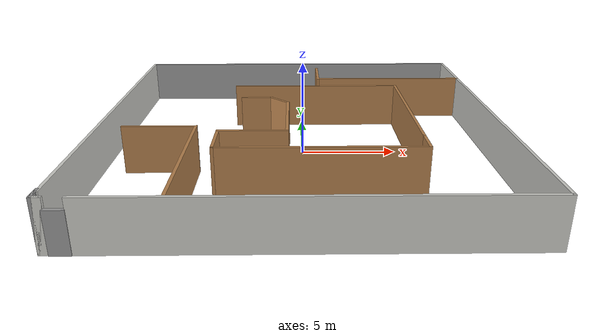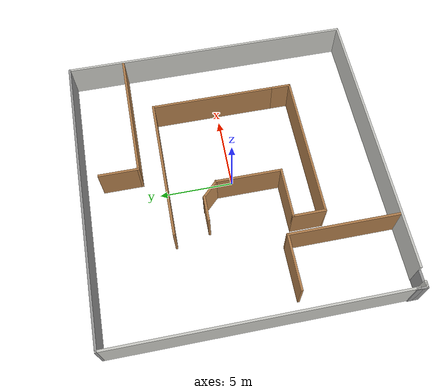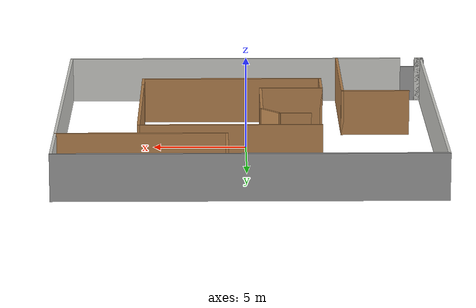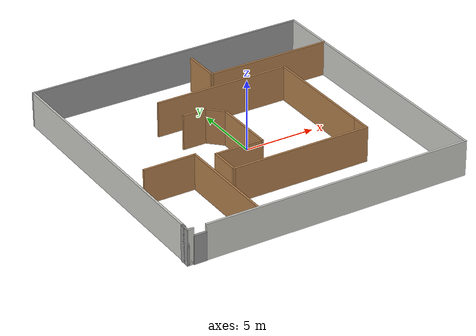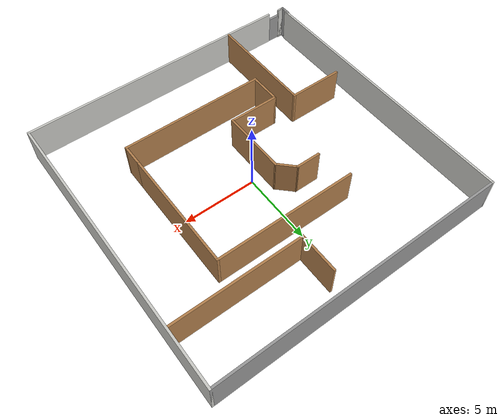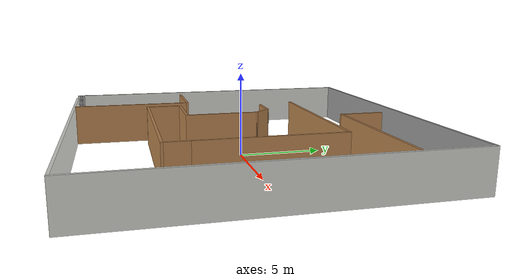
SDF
<?xml version='1.0'?>
<sdf version='1.7'>
  <model name='House_Model'>
    <pose>-0.145244 -0.009563 0 0 -0 0</pose>
    <link name='Door_0'>
      <collision name='Door_0_Collision'>
        <geometry>
          <box>
            <size>0.9 0.17 2</size>
          </box>
        </geometry>
        <pose>0 0 1 0 -0 0</pose>
      </collision>
      <visual name='Door_0_Visual'>
        <pose>0 0 1 0 -0 0</pose>
        <geometry>
          <box>
            <size>0.9 0.17 2</size>
          </box>
        </geometry>
        <material>
          <script>
            <uri>file://media/materials/scripts/gazebo.material</uri>
            <name>Gazebo/Grey</name>
          </script>
        </material>
      </visual>
      <pose>-9.27136 -9.95175 0 0 -0 0</pose>
    </link>
    <link name='Wall_10'>
      <collision name='Wall_10_Collision'>
        <geometry>
          <box>
            <size>20 0.15 2.5</size>
          </box>
        </geometry>
        <pose>0 0 1.25 0 -0 0</pose>
      </collision>
      <visual name='Wall_10_Visual'>
        <pose>0 0 1.25 0 -0 0</pose>
        <geometry>
          <box>
            <size>20 0.15 2.5</size>
          </box>
        </geometry>
        <material>
          <script>
            <uri>file://media/materials/scripts/gazebo.material</uri>
            <name>Gazebo/CeilingTiled</name>
          </script>
          <ambient>1 1 1 1</ambient>
        </material>
        <meta>
          <layer>0</layer>
        </meta>
      </visual>
      <pose>10.0785 -0 0 0 -0 -1.5708</pose>
    </link>
    <link name='Wall_11'>
      <collision name='Wall_11_Collision'>
        <geometry>
          <box>
            <size>19 0.15 2.5</size>
          </box>
        </geometry>
        <pose>0 0 1.25 0 -0 0</pose>
      </collision>
      <visual name='Wall_11_Visual'>
        <pose>0 0 1.25 0 -0 0</pose>
        <geometry>
          <box>
            <size>19 0.15 2.5</size>
          </box>
        </geometry>
        <material>
          <script>
            <uri>file://media/materials/scripts/gazebo.material</uri>
            <name>Gazebo/CeilingTiled</name>
          </script>
          <ambient>1 1 1 1</ambient>
        </material>
        <meta>
          <layer>0</layer>
        </meta>
      </visual>
      <pose>0.653454 -9.925 0 0 -0 3.14159</pose>
    </link>
    <link name='Wall_15'>
      <collision name='Wall_15_Collision'>
        <geometry>
          <box>
            <size>0.75 0.15 2.5</size>
          </box>
        </geometry>
        <pose>0 0 1.25 0 -0 0</pose>
      </collision>
      <visual name='Wall_15_Visual'>
        <pose>0 0 1.25 0 -0 0</pose>
        <geometry>
          <box>
            <size>0.75 0.15 2.5</size>
          </box>
        </geometry>
        <material>
          <script>
            <uri>file://media/materials/scripts/gazebo.material</uri>
            <name>Gazebo/Grey</name>
          </script>
          <ambient>1 1 1 1</ambient>
        </material>
        <meta>
          <layer>0</layer>
        </meta>
      </visual>
      <pose>-10.0785 -9.59794 0 0 -0 1.5708</pose>
    </link>
    <link name='Wall_17'>
      <collision name='Wall_17_Collision'>
        <geometry>
          <box>
            <size>0.75 0.15 2.5</size>
          </box>
        </geometry>
        <pose>0 0 1.25 0 -0 0</pose>
      </collision>
      <visual name='Wall_17_Visual'>
        <pose>0 0 1.25 0 -0 0</pose>
        <geometry>
          <box>
            <size>0.75 0.15 2.5</size>
          </box>
        </geometry>
        <material>
          <script>
            <uri>file://media/materials/scripts/gazebo.material</uri>
            <name>Gazebo/Grey</name>
          </script>
          <ambient>1 1 1 1</ambient>
        </material>
        <meta>
          <layer>0</layer>
        </meta>
      </visual>
      <pose>-10.0785 -9.59794 0 0 -0 -1.5708</pose>
    </link>
    <link name='Wall_18'>
      <collision name='Wall_18_Collision'>
        <geometry>
          <box>
            <size>0.5 0.15 2.5</size>
          </box>
        </geometry>
        <pose>0 0 1.25 0 -0 0</pose>
      </collision>
      <visual name='Wall_18_Visual'>
        <pose>0 0 1.25 0 -0 0</pose>
        <geometry>
          <box>
            <size>0.5 0.15 2.5</size>
          </box>
        </geometry>
        <material>
          <script>
            <uri>file://media/materials/scripts/gazebo.material</uri>
            <name>Gazebo/CeilingTiled</name>
          </script>
          <ambient>1 1 1 1</ambient>
        </material>
        <meta>
          <layer>0</layer>
        </meta>
      </visual>
      <pose>-9.90345 -9.89794 0 0 -0 0</pose>
    </link>
    <link name='Wall_19'>
      <collision name='Wall_19_Collision'>
        <geometry>
          <box>
            <size>0.5 0.15 2.5</size>
          </box>
        </geometry>
        <pose>0 0 1.25 0 -0 0</pose>
      </collision>
      <visual name='Wall_19_Visual'>
        <pose>0 0 1.25 0 -0 0</pose>
        <geometry>
          <box>
            <size>0.5 0.15 2.5</size>
          </box>
        </geometry>
        <material>
          <script>
            <uri>file://media/materials/scripts/gazebo.material</uri>
            <name>Gazebo/CeilingTiled</name>
          </script>
          <ambient>1 1 1 1</ambient>
        </material>
        <meta>
          <layer>0</layer>
        </meta>
      </visual>
      <pose>-9.90345 -9.89794 0 0 -0 3.14159</pose>
    </link>
    <link name='Wall_23'>
      <collision name='Wall_23_Collision'>
        <geometry>
          <box>
            <size>7.5 0.15 2.5</size>
          </box>
        </geometry>
        <pose>0 0 1.25 0 -0 0</pose>
      </collision>
      <visual name='Wall_23_Visual'>
        <pose>0 0 1.25 0 -0 0</pose>
        <geometry>
          <box>
            <size>7.5 0.15 2.5</size>
          </box>
        </geometry>
        <material>
          <script>
            <uri>file://media/materials/scripts/gazebo.material</uri>
            <name>Gazebo/Wood</name>
          </script>
          <ambient>1 1 1 1</ambient>
        </material>
        <meta>
          <layer>0</layer>
        </meta>
      </visual>
      <pose>-5.18208 -6.16914 0 0 -0 1.5708</pose>
    </link>
    <link name='Wall_24'>
      <collision name='Wall_24_Collision'>
        <geometry>
          <box>
            <size>3.75 0.15 2.5</size>
          </box>
        </geometry>
        <pose>0 0 1.25 0 -0 0</pose>
      </collision>
      <visual name='Wall_24_Visual'>
        <pose>0 0 1.25 0 -0 0</pose>
        <geometry>
          <box>
            <size>3.75 0.15 2.5</size>
          </box>
        </geometry>
        <material>
          <script>
            <uri>file://media/materials/scripts/gazebo.material</uri>
            <name>Gazebo/Wood</name>
          </script>
          <ambient>1 1 1 1</ambient>
        </material>
        <meta>
          <layer>0</layer>
        </meta>
      </visual>
      <pose>-6.98208 -2.49414 0 0 -0 3.14159</pose>
    </link>
    <link name='Wall_26'>
      <collision name='Wall_26_Collision'>
        <geometry>
          <box>
            <size>9 0.15 2.5</size>
          </box>
        </geometry>
        <pose>0 0 1.25 0 -0 0</pose>
      </collision>
      <visual name='Wall_26_Visual'>
        <pose>0 0 1.25 0 -0 0</pose>
        <geometry>
          <box>
            <size>9 0.15 2.5</size>
          </box>
        </geometry>
        <material>
          <script>
            <uri>file://media/materials/scripts/gazebo.material</uri>
            <name>Gazebo/Wood</name>
          </script>
          <ambient>1 1 1 1</ambient>
        </material>
        <meta>
          <layer>0</layer>
        </meta>
      </visual>
      <pose>5.62011 6.08253 0 0 -0 3.14159</pose>
    </link>
    <link name='Wall_27'>
      <collision name='Wall_27_Collision'>
        <geometry>
          <box>
            <size>2.75 0.15 2.5</size>
          </box>
        </geometry>
        <pose>0 0 1.25 0 -0 0</pose>
      </collision>
      <visual name='Wall_27_Visual'>
        <pose>0 0 1.25 0 -0 0</pose>
        <geometry>
          <box>
            <size>2.75 0.15 2.5</size>
          </box>
        </geometry>
        <material>
          <script>
            <uri>file://media/materials/scripts/gazebo.material</uri>
            <name>Gazebo/Wood</name>
          </script>
          <ambient>1 1 1 1</ambient>
        </material>
        <meta>
          <layer>0</layer>
        </meta>
      </visual>
      <pose>1.19511 7.38253 0 0 -0 1.5708</pose>
    </link>
    <link name='Wall_29'>
      <collision name='Wall_29_Collision'>
        <geometry>
          <box>
            <size>9.75 0.15 2.5</size>
          </box>
        </geometry>
        <pose>0 0 1.25 0 -0 0</pose>
      </collision>
      <visual name='Wall_29_Visual'>
        <pose>0 0 1.25 0 -0 0</pose>
        <geometry>
          <box>
            <size>9.75 0.15 2.5</size>
          </box>
        </geometry>
        <material>
          <script>
            <uri>file://media/materials/scripts/gazebo.material</uri>
            <name>Gazebo/Wood</name>
          </script>
          <ambient>1 1 1 1</ambient>
        </material>
        <meta>
          <layer>0</layer>
        </meta>
      </visual>
      <pose>1.01688 4.46834 0 0 -0 0</pose>
    </link>
    <link name='Wall_30'>
      <collision name='Wall_30_Collision'>
        <geometry>
          <box>
            <size>8.5 0.15 2.5</size>
          </box>
        </geometry>
        <pose>0 0 1.25 0 -0 0</pose>
      </collision>
      <visual name='Wall_30_Visual'>
        <pose>0 0 1.25 0 -0 0</pose>
        <geometry>
          <box>
            <size>8.5 0.15 2.5</size>
          </box>
        </geometry>
        <material>
          <script>
            <uri>file://media/materials/scripts/gazebo.material</uri>
            <name>Gazebo/Wood</name>
          </script>
          <ambient>1 1 1 1</ambient>
        </material>
        <meta>
          <layer>0</layer>
        </meta>
      </visual>
      <pose>5.81688 0.293342 0 0 -0 -1.5708</pose>
    </link>
    <link name='Wall_31'>
      <collision name='Wall_31_Collision'>
        <geometry>
          <box>
            <size>1.5 0.15 2.5</size>
          </box>
        </geometry>
        <pose>0 0 1.25 0 -0 0</pose>
      </collision>
      <visual name='Wall_31_Visual'>
        <pose>0 0 1.25 0 -0 0</pose>
        <geometry>
          <box>
            <size>1.5 0.15 2.5</size>
          </box>
        </geometry>
        <material>
          <script>
            <uri>file://media/materials/scripts/gazebo.material</uri>
            <name>Gazebo/Wood</name>
          </script>
          <ambient>1 1 1 1</ambient>
        </material>
        <meta>
          <layer>0</layer>
        </meta>
      </visual>
      <pose>5.81688 -4.55666 0 0 -0 -1.5708</pose>
    </link>
    <link name='Wall_32'>
      <collision name='Wall_32_Collision'>
        <geometry>
          <box>
            <size>10 0.15 2.5</size>
          </box>
        </geometry>
        <pose>0 0 1.25 0 -0 0</pose>
      </collision>
      <visual name='Wall_32_Visual'>
        <pose>0 0 1.25 0 -0 0</pose>
        <geometry>
          <box>
            <size>10 0.15 2.5</size>
          </box>
        </geometry>
        <material>
          <script>
            <uri>file://media/materials/scripts/gazebo.material</uri>
            <name>Gazebo/Wood</name>
          </script>
          <ambient>1 1 1 1</ambient>
        </material>
        <meta>
          <layer>0</layer>
        </meta>
      </visual>
      <pose>0.891884 -5.23166 0 0 -0 3.14159</pose>
    </link>
    <link name='Wall_33'>
      <collision name='Wall_33_Collision'>
        <geometry>
          <box>
            <size>2.25 0.15 2.5</size>
          </box>
        </geometry>
        <pose>0 0 1.25 0 -0 0</pose>
      </collision>
      <visual name='Wall_33_Visual'>
        <pose>0 0 1.25 0 -0 0</pose>
        <geometry>
          <box>
            <size>2.25 0.15 2.5</size>
          </box>
        </geometry>
        <material>
          <script>
            <uri>file://media/materials/scripts/gazebo.material</uri>
            <name>Gazebo/Wood</name>
          </script>
          <ambient>1 1 1 1</ambient>
        </material>
        <meta>
          <layer>0</layer>
        </meta>
      </visual>
      <pose>-4.03312 -4.18166 0 0 -0 1.5708</pose>
    </link>
    <link name='Wall_34'>
      <collision name='Wall_34_Collision'>
        <geometry>
          <box>
            <size>3.5 0.15 2.5</size>
          </box>
        </geometry>
        <pose>0 0 1.25 0 -0 0</pose>
      </collision>
      <visual name='Wall_34_Visual'>
        <pose>0 0 1.25 0 -0 0</pose>
        <geometry>
          <box>
            <size>3.5 0.15 2.5</size>
          </box>
        </geometry>
        <material>
          <script>
            <uri>file://media/materials/scripts/gazebo.material</uri>
            <name>Gazebo/Wood</name>
          </script>
          <ambient>1 1 1 1</ambient>
        </material>
        <meta>
          <layer>0</layer>
        </meta>
      </visual>
      <pose>-2.35812 -3.13166 0 0 -0 0</pose>
    </link>
    <link name='Wall_35'>
      <collision name='Wall_35_Collision'>
        <geometry>
          <box>
            <size>4.5 0.15 2.5</size>
          </box>
        </geometry>
        <pose>0 0 1.25 0 -0 0</pose>
      </collision>
      <visual name='Wall_35_Visual'>
        <pose>0 0 1.25 0 -0 0</pose>
        <geometry>
          <box>
            <size>4.5 0.15 2.5</size>
          </box>
        </geometry>
        <material>
          <script>
            <uri>file://media/materials/scripts/gazebo.material</uri>
            <name>Gazebo/Wood</name>
          </script>
          <ambient>1 1 1 1</ambient>
        </material>
        <meta>
          <layer>0</layer>
        </meta>
      </visual>
      <pose>-0.683116 -0.956658 0 0 -0 1.5708</pose>
    </link>
    <link name='Wall_36'>
      <collision name='Wall_36_Collision'>
        <geometry>
          <box>
            <size>1.5 0.15 2.5</size>
          </box>
        </geometry>
        <pose>0 0 1.25 0 -0 0</pose>
      </collision>
      <visual name='Wall_36_Visual'>
        <pose>0 0 1.25 0 -0 0</pose>
        <geometry>
          <box>
            <size>1.5 0.15 2.5</size>
          </box>
        </geometry>
        <material>
          <script>
            <uri>file://media/materials/scripts/gazebo.material</uri>
            <name>Gazebo/Wood</name>
          </script>
          <ambient>1 1 1 1</ambient>
        </material>
        <meta>
          <layer>0</layer>
        </meta>
      </visual>
      <pose>-1.16041 1.69564 0 0 -0 2.35619</pose>
    </link>
    <link name='Wall_37'>
      <collision name='Wall_37_Collision'>
        <geometry>
          <box>
            <size>1.75 0.15 2.5</size>
          </box>
        </geometry>
        <pose>0 0 1.25 0 -0 0</pose>
      </collision>
      <visual name='Wall_37_Visual'>
        <pose>0 0 1.25 0 -0 0</pose>
        <geometry>
          <box>
            <size>1.75 0.15 2.5</size>
          </box>
        </geometry>
        <material>
          <script>
            <uri>file://media/materials/scripts/gazebo.material</uri>
            <name>Gazebo/Wood</name>
          </script>
          <ambient>1 1 1 1</ambient>
        </material>
        <meta>
          <layer>0</layer>
        </meta>
      </visual>
      <pose>-2.43771 2.17294 0 0 -0 3.14159</pose>
    </link>
    <link name='Wall_8'>
      <collision name='Wall_8_Collision'>
        <geometry>
          <box>
            <size>19.5 0.15 2.5</size>
          </box>
        </geometry>
        <pose>0 0 1.25 0 -0 0</pose>
      </collision>
      <visual name='Wall_8_Visual'>
        <pose>0 0 1.25 0 -0 0</pose>
        <geometry>
          <box>
            <size>19.5 0.15 2.5</size>
          </box>
        </geometry>
        <material>
          <script>
            <uri>file://media/materials/scripts/gazebo.material</uri>
            <name>Gazebo/CeilingTiled</name>
          </script>
          <ambient>1 1 1 1</ambient>
        </material>
        <meta>
          <layer>0</layer>
        </meta>
      </visual>
      <pose>-10.0215 0.25 0 0 -0 1.5708</pose>
    </link>
    <link name='Wall_9'>
      <collision name='Wall_9_Collision'>
        <geometry>
          <box>
            <size>20.25 0.15 2.5</size>
          </box>
        </geometry>
        <pose>0 0 1.25 0 -0 0</pose>
      </collision>
      <visual name='Wall_9_Visual'>
        <pose>0 0 1.25 0 -0 0</pose>
        <geometry>
          <box>
            <size>20.25 0.15 2.5</size>
          </box>
        </geometry>
        <material>
          <script>
            <uri>file://media/materials/scripts/gazebo.material</uri>
            <name>Gazebo/Grey</name>
          </script>
          <ambient>1 1 1 1</ambient>
        </material>
        <meta>
          <layer>0</layer>
        </meta>
      </visual>
      <pose>0.028454 9.925 0 0 -0 0</pose>
    </link>
    <static>1</static>
  </model>
</sdf>
